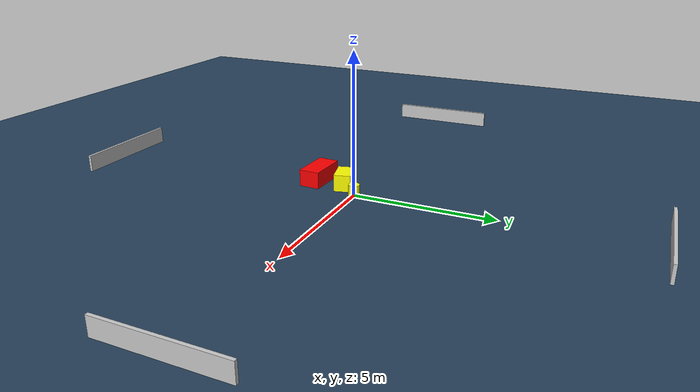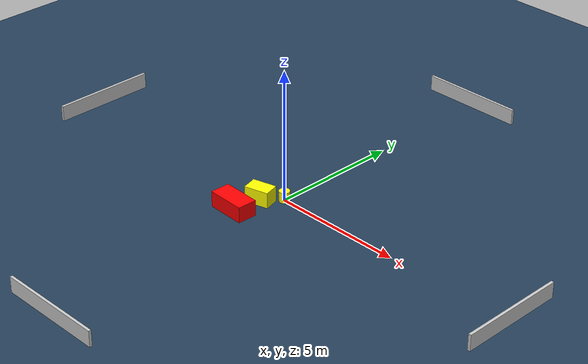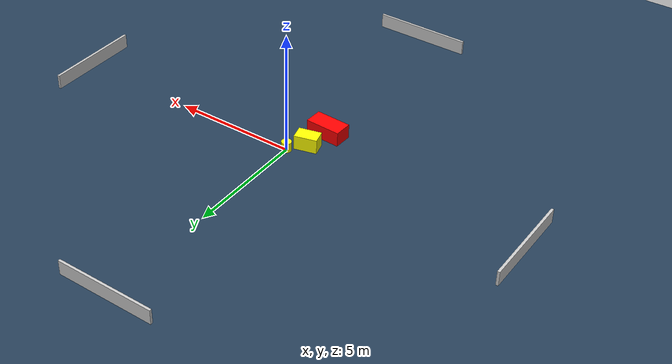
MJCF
<?xml version="1.0" ?>
<mujoco model="generated_environment">
  <option timestep="0.01" integrator="RK4" cone="elliptic"/>
  <default>
    <geom density="1"/>
  </default>
  <asset>
    <texture builtin="gradient" height="3072" name="skybox" rgb1="0.3 0.5 0.7" rgb2="0 0 0" type="skybox" width="512"/>
    <texture builtin="checker" height="300" name="groundplane" rgb1="0.2 0.3 0.4" rgb2="0.1 0.2 0.3" type="2d" width="300"/>
    <material name="groundplane" reflectance="0.2" texrepeat="5 5" texture="groundplane"/>
  </asset>
  <worldbody>
    <light dir="0 0 -1" directional="true" pos="0 0 1.5"/>
    <geom condim="3" friction="0.5 0.005 0.001" material="groundplane" name="floor" pos="0 0 0" size="0 0 0.05" type="plane"/>
    <body name="walls">
      <geom name="wall_1" condim="4" pos="-10.0 0.0 0.3" rgba="0.800000011920929 0.800000011920929 0.800000011920929 1.0" size="0.05 2.0 0.3" type="box"/>
      <geom name="wall_2" condim="4" pos="10.0 0.0 0.3" rgba="0.800000011920929 0.800000011920929 0.800000011920929 1.0" size="0.05 2.0 0.3" type="box"/>
      <geom name="wall_3" condim="4" pos="0.0 -10.0 0.3" rgba="0.800000011920929 0.800000011920929 0.800000011920929 1.0" size="2.0 0.05 0.3" type="box"/>
      <geom name="wall_4" condim="4" pos="0.0 10.0 0.3" rgba="0.800000011920929 0.800000011920929 0.800000011920929 1.0" size="2.0 0.05 0.3" type="box"/>
    </body>
    <body name="robot">
      <joint name="joint_x" type="slide" pos="0 0 0" axis="1 0 0"/>
      <joint name="joint_y" type="slide" pos="0 0 0" axis="0 1 0"/>
      <geom name="robot" type="cylinder" pos="0.0 0.0 0.2" size="0.2 0.2 0.0" mass="5.0" friction="1.0 0.005 0.0001" condim="4" rgba="1.0 1.0 0.0 1.0"/>
    </body>
    <body name="obstacle_1_movable">
      <geom name="obstacle_1_movable" condim="4" pos="-0.5479839570631554 -0.6226088874647322 0.3" euler="0 0 14.50378186705227" friction="0.0 0.005 0.001" rgba="1.0 1.0 0.0 1.0" size="0.4582701682972254 0.2936326283487358 0.3" type="box" mass="0.1"/>
      <joint type="free"/>
    </body>
    <body name="obstacle_2_static">
      <geom name="obstacle_2_static" condim="4" pos="-0.7238561014827045 -1.7165687272335122 0.3" euler="0 0 357.54407865371263" friction="0.0 0.005 0.001" rgba="1.0 0.0 0.0 1.0" size="0.7253464448336786 0.37146032051496297 0.3" type="box"/>
    </body>
  </worldbody>
  <actuator>
    <motor name="actuator_x" joint="joint_x" gear="1" ctrlrange="-1 1"/>
    <motor name="actuator_y" joint="joint_y" gear="1" ctrlrange="-1 1"/>
  </actuator>
</mujoco>
